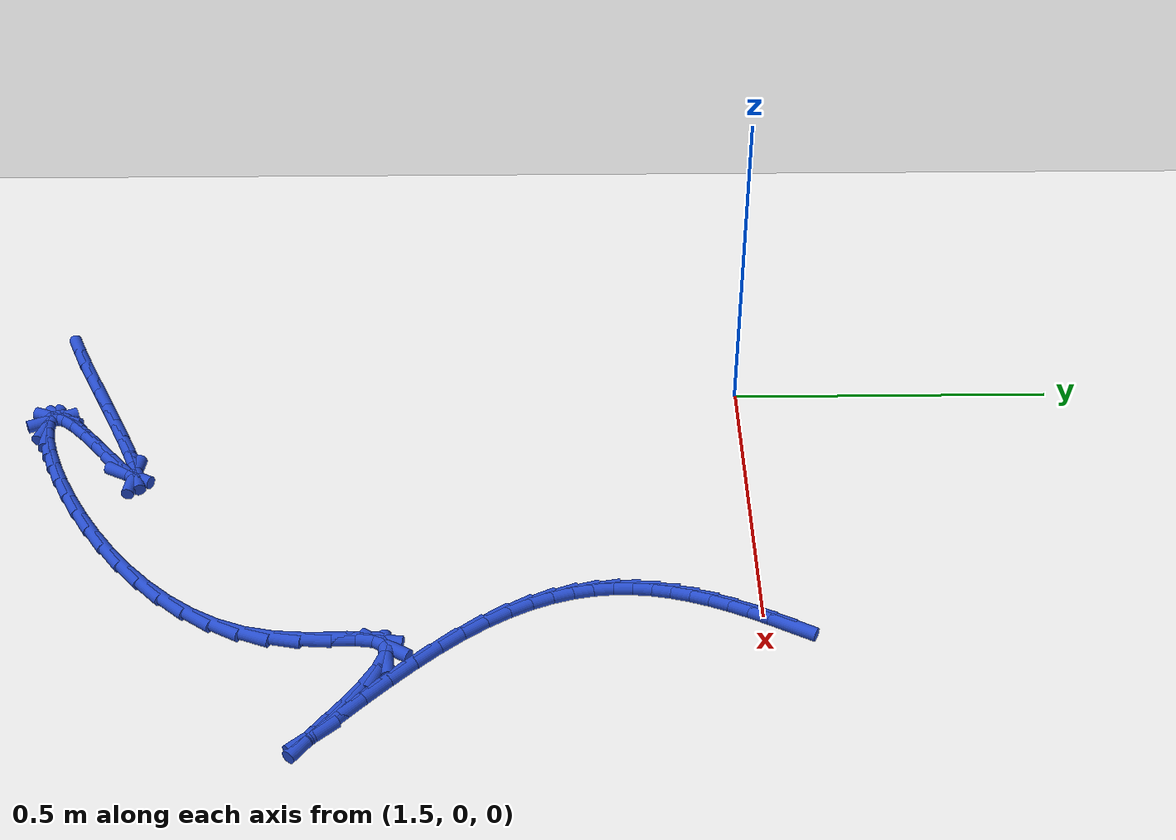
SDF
<sdf version="1.6">
 <world name="default">
  <model name="ground_plane">
   <static>1</static>
   <link name="link">
    <collision name="collision">
     <geometry><plane><normal>0 0 1</normal><size>100 100</size></plane></geometry>
     <surface><friction><ode><mu>100</mu><mu2>50</mu2></ode></friction></surface>
    </collision>
    <visual name="visual">
     <cast_shadows>0</cast_shadows>
     <geometry><plane><normal>0 0 1</normal><size>100 100</size></plane></geometry>
     <material>
      <script><uri>file://media/materials/scripts/gazebo.material</uri><name>Gazebo/WhiteGlow</name></script>
     </material>
    </visual>
   </link>
  </model>
  <model name="line">
   <link name="link_148">
    <pose>2.026156596695086 0.034900806524206976 0.01 0 1.57 1.0692998099908144</pose>
    <collision name="collision">
     <geometry><cylinder><radius>0.01</radius><length>0.08</length></cylinder></geometry>
    </collision>
    <visual name="visual">
     <material>
      <script><name>Gazebo/Blue</name><uri>file://media/materials/scripts/gazebo.material</uri></script>
     </material>
     <geometry><cylinder><radius>0.01</radius><length>0.08</length></cylinder></geometry>
    </visual>
   </link>
   <link name="link_149">
    <pose>2.011159084999877 0.007545425727394667 0.01 0 1.57 1.098246546408077</pose>
    <collision name="collision">
     <geometry><cylinder><radius>0.01</radius><length>0.08</length></cylinder></geometry>
    </collision>
    <visual name="visual">
     <material>
      <script><name>Gazebo/Blue</name><uri>file://media/materials/scripts/gazebo.material</uri></script>
     </material>
     <geometry><cylinder><radius>0.01</radius><length>0.08</length></cylinder></geometry>
    </visual>
   </link>
   <link name="link_150">
    <pose>1.9972937090647713 -0.01957894655006657 0.01 0 1.57 1.1360982717083052</pose>
    <collision name="collision">
     <geometry><cylinder><radius>0.01</radius><length>0.08</length></cylinder></geometry>
    </collision>
    <visual name="visual">
     <material>
      <script><name>Gazebo/Blue</name><uri>file://media/materials/scripts/gazebo.material</uri></script>
     </material>
     <geometry><cylinder><radius>0.01</radius><length>0.08</length></cylinder></geometry>
    </visual>
   </link>
   <link name="link_151">
    <pose>1.9847671175173789 -0.04655733113238582 0.01 0 1.57 1.183449038808155</pose>
    <collision name="collision">
     <geometry><cylinder><radius>0.01</radius><length>0.08</length></cylinder></geometry>
    </collision>
    <visual name="visual">
     <material>
      <script><name>Gazebo/Blue</name><uri>file://media/materials/scripts/gazebo.material</uri></script>
     </material>
     <geometry><cylinder><radius>0.01</radius><length>0.08</length></cylinder></geometry>
    </visual>
   </link>
   <link name="link_152">
    <pose>1.973785958985308 -0.07347474884377143 0.01 0 1.57 1.2407646725776702</pose>
    <collision name="collision">
     <geometry><cylinder><radius>0.01</radius><length>0.08</length></cylinder></geometry>
    </collision>
    <visual name="visual">
     <material>
      <script><name>Gazebo/Blue</name><uri>file://media/materials/scripts/gazebo.material</uri></script>
     </material>
     <geometry><cylinder><radius>0.01</radius><length>0.08</length></cylinder></geometry>
    </visual>
   </link>
   <link name="link_153">
    <pose>1.9645568820961659 -0.10041622050843427 0.01 0 1.57 1.308232263549762</pose>
    <collision name="collision">
     <geometry><cylinder><radius>0.01</radius><length>0.08</length></cylinder></geometry>
    </collision>
    <visual name="visual">
     <material>
      <script><name>Gazebo/Blue</name><uri>file://media/materials/scripts/gazebo.material</uri></script>
     </material>
     <geometry><cylinder><radius>0.01</radius><length>0.08</length></cylinder></geometry>
    </visual>
   </link>
   <link name="link_154">
    <pose>1.9572865354775617 -0.12746676695058257 0.01 0 1.57 1.3855690307968878</pose>
    <collision name="collision">
     <geometry><cylinder><radius>0.01</radius><length>0.08</length></cylinder></geometry>
    </collision>
    <visual name="visual">
     <material>
      <script><name>Gazebo/Blue</name><uri>file://media/materials/scripts/gazebo.material</uri></script>
     </material>
     <geometry><cylinder><radius>0.01</radius><length>0.08</length></cylinder></geometry>
    </visual>
   </link>
   <link name="link_155">
    <pose>1.952181567757104 -0.15471140899442548 0.01 0 1.57 1.4718268725051524</pose>
    <collision name="collision">
     <geometry><cylinder><radius>0.01</radius><length>0.08</length></cylinder></geometry>
    </collision>
    <visual name="visual">
     <material>
      <script><name>Gazebo/Blue</name><uri>file://media/materials/scripts/gazebo.material</uri></script>
     </material>
     <geometry><cylinder><radius>0.01</radius><length>0.08</length></cylinder></geometry>
    </visual>
   </link>
   <link name="link_156">
    <pose>1.9494486275624017 -0.18223516746417218 0.01 0 1.57 1.5652648062560262</pose>
    <collision name="collision">
     <geometry><cylinder><radius>0.01</radius><length>0.08</length></cylinder></geometry>
    </collision>
    <visual name="visual">
     <material>
      <script><name>Gazebo/Blue</name><uri>file://media/materials/scripts/gazebo.material</uri></script>
     </material>
     <geometry><cylinder><radius>0.01</radius><length>0.08</length></cylinder></geometry>
    </visual>
   </link>
   <link name="link_157">
    <pose>1.9492943635210622 -0.2101230631840318 0.01 0 1.57 -1.4782129930456713</pose>
    <collision name="collision">
     <geometry><cylinder><radius>0.01</radius><length>0.08</length></cylinder></geometry>
    </collision>
    <visual name="visual">
     <material>
      <script><name>Gazebo/Blue</name><uri>file://media/materials/scripts/gazebo.material</uri></script>
     </material>
     <geometry><cylinder><radius>0.01</radius><length>0.08</length></cylinder></geometry>
    </visual>
   </link>
   <link name="link_158">
    <pose>1.951925424260695 -0.23846011697821343 0.01 0 1.57 -1.37844183636819</pose>
    <collision name="collision">
     <geometry><cylinder><radius>0.01</radius><length>0.08</length></cylinder></geometry>
    </collision>
    <visual name="visual">
     <material>
      <script><name>Gazebo/Blue</name><uri>file://media/materials/scripts/gazebo.material</uri></script>
     </material>
     <geometry><cylinder><radius>0.01</radius><length>0.08</length></cylinder></geometry>
    </visual>
   </link>
   <link name="link_159">
    <pose>1.9575484584089078 -0.26733134967092625 0.01 0 1.57 -1.2801321884754384</pose>
    <collision name="collision">
     <geometry><cylinder><radius>0.01</radius><length>0.08</length></cylinder></geometry>
    </collision>
    <visual name="visual">
     <material>
      <script><name>Gazebo/Blue</name><uri>file://media/materials/scripts/gazebo.material</uri></script>
     </material>
     <geometry><cylinder><radius>0.01</radius><length>0.08</length></cylinder></geometry>
    </visual>
   </link>
   <link name="link_160">
    <pose>1.96637011459331 -0.29682178208637955 0.01 0 1.57 -1.1860413258783542</pose>
    <collision name="collision">
     <geometry><cylinder><radius>0.01</radius><length>0.08</length></cylinder></geometry>
    </collision>
    <visual name="visual">
     <material>
      <script><name>Gazebo/Blue</name><uri>file://media/materials/scripts/gazebo.material</uri></script>
     </material>
     <geometry><cylinder><radius>0.01</radius><length>0.08</length></cylinder></geometry>
    </visual>
   </link>
   <link name="link_161">
    <pose>1.978597041441509 -0.32701643504878225 0.01 0 1.57 -1.0982320031742576</pose>
    <collision name="collision">
     <geometry><cylinder><radius>0.01</radius><length>0.08</length></cylinder></geometry>
    </collision>
    <visual name="visual">
     <material>
      <script><name>Gazebo/Blue</name><uri>file://media/materials/scripts/gazebo.material</uri></script>
     </material>
     <geometry><cylinder><radius>0.01</radius><length>0.08</length></cylinder></geometry>
    </visual>
   </link>
   <link name="link_162">
    <pose>1.9944358875811137 -0.35800032938234355 0.01 0 1.57 -1.0179493388167618</pose>
    <collision name="collision">
     <geometry><cylinder><radius>0.01</radius><length>0.08</length></cylinder></geometry>
    </collision>
    <visual name="visual">
     <material>
      <script><name>Gazebo/Blue</name><uri>file://media/materials/scripts/gazebo.material</uri></script>
     </material>
     <geometry><cylinder><radius>0.01</radius><length>0.08</length></cylinder></geometry>
    </visual>
   </link>
   <link name="link_163">
    <pose>2.0140933016397327 -0.3898584859112726 0.01 0 1.57 -0.9456889492649938</pose>
    <collision name="collision">
     <geometry><cylinder><radius>0.01</radius><length>0.08</length></cylinder></geometry>
    </collision>
    <visual name="visual">
     <material>
      <script><name>Gazebo/Blue</name><uri>file://media/materials/scripts/gazebo.material</uri></script>
     </material>
     <geometry><cylinder><radius>0.01</radius><length>0.08</length></cylinder></geometry>
    </visual>
   </link>
   <link name="link_164">
    <pose>2.0377759322449744 -0.4226759254597787 0.01 0 1.57 -0.8817113763552216</pose>
    <collision name="collision">
     <geometry><cylinder><radius>0.01</radius><length>0.08</length></cylinder></geometry>
    </collision>
    <visual name="visual">
     <material>
      <script><name>Gazebo/Blue</name><uri>file://media/materials/scripts/gazebo.material</uri></script>
     </material>
     <geometry><cylinder><radius>0.01</radius><length>0.08</length></cylinder></geometry>
    </visual>
   </link>
   <link name="link_165">
    <pose>2.0656480769217183 -0.45650960085550446 0.01 0 1.57 -0.8322895788720078</pose>
    <collision name="collision">
     <geometry><cylinder><radius>0.01</radius><length>0.08</length></cylinder></geometry>
    </collision>
    <visual name="visual">
     <material>
      <script><name>Gazebo/Blue</name><uri>file://media/materials/scripts/gazebo.material</uri></script>
     </material>
     <geometry><cylinder><radius>0.01</radius><length>0.08</length></cylinder></geometry>
    </visual>
   </link>
   <link name="link_166">
    <pose>2.0967438220571615 -0.49066742274566505 0.01 0 1.57 -0.7984434126836565</pose>
    <collision name="collision">
     <geometry><cylinder><radius>0.01</radius><length>0.08</length></cylinder></geometry>
    </collision>
    <visual name="visual">
     <material>
      <script><name>Gazebo/Blue</name><uri>file://media/materials/scripts/gazebo.material</uri></script>
     </material>
     <geometry><cylinder><radius>0.01</radius><length>0.08</length></cylinder></geometry>
    </visual>
   </link>
   <link name="link_167">
    <pose>2.12887282784419 -0.5236458190059992 0.01 0 1.57 -0.7746755814254074</pose>
    <collision name="collision">
     <geometry><cylinder><radius>0.01</radius><length>0.08</length></cylinder></geometry>
    </collision>
    <visual name="visual">
     <material>
      <script><name>Gazebo/Blue</name><uri>file://media/materials/scripts/gazebo.material</uri></script>
     </material>
     <geometry><cylinder><radius>0.01</radius><length>0.08</length></cylinder></geometry>
    </visual>
   </link>
   <link name="link_168">
    <pose>2.159783522485146 -0.5539006362950022 0.01 0 1.57 -0.7581957425340369</pose>
    <collision name="collision">
     <geometry><cylinder><radius>0.01</radius><length>0.08</length></cylinder></geometry>
    </collision>
    <visual name="visual">
     <material>
      <script><name>Gazebo/Blue</name><uri>file://media/materials/scripts/gazebo.material</uri></script>
     </material>
     <geometry><cylinder><radius>0.01</radius><length>0.08</length></cylinder></geometry>
    </visual>
   </link>
   <link name="link_169">
    <pose>2.1872243341823707 -0.579887721271169 0.01 0 1.57 -0.7485566479132283</pose>
    <collision name="collision">
     <geometry><cylinder><radius>0.01</radius><length>0.08</length></cylinder></geometry>
    </collision>
    <visual name="visual">
     <material>
      <script><name>Gazebo/Blue</name><uri>file://media/materials/scripts/gazebo.material</uri></script>
     </material>
     <geometry><cylinder><radius>0.01</radius><length>0.08</length></cylinder></geometry>
    </visual>
   </link>
   <link name="link_170">
    <pose>2.208943691138207 -0.6000629205929962 0.01 0 1.57 -0.7505110268280868</pose>
    <collision name="collision">
     <geometry><cylinder><radius>0.01</radius><length>0.08</length></cylinder></geometry>
    </collision>
    <visual name="visual">
     <material>
      <script><name>Gazebo/Blue</name><uri>file://media/materials/scripts/gazebo.material</uri></script>
     </material>
     <geometry><cylinder><radius>0.01</radius><length>0.08</length></cylinder></geometry>
    </visual>
   </link>
   <link name="link_171">
    <pose>2.2226900215549965 -0.6128820809189784 0.01 0 1.57 -0.8387344292749609</pose>
    <collision name="collision">
     <geometry><cylinder><radius>0.01</radius><length>0.08</length></cylinder></geometry>
    </collision>
    <visual name="visual">
     <material>
      <script><name>Gazebo/Blue</name><uri>file://media/materials/scripts/gazebo.material</uri></script>
     </material>
     <geometry><cylinder><radius>0.01</radius><length>0.08</length></cylinder></geometry>
    </visual>
   </link>
   <link name="link_172">
    <pose>2.226211753635081 -0.6168010489076112 0.01 0 1.57 -0.6284560872540248</pose>
    <collision name="collision">
     <geometry><cylinder><radius>0.01</radius><length>0.08</length></cylinder></geometry>
    </collision>
    <visual name="visual">
     <material>
      <script><name>Gazebo/Blue</name><uri>file://media/materials/scripts/gazebo.material</uri></script>
     </material>
     <geometry><cylinder><radius>0.01</radius><length>0.08</length></cylinder></geometry>
    </visual>
   </link>
   <link name="link_173">
    <pose>2.217346941023165 -0.6103585222588764 0.01 0 1.57 -0.6501838471967537</pose>
    <collision name="collision">
     <geometry><cylinder><radius>0.01</radius><length>0.08</length></cylinder></geometry>
    </collision>
    <visual name="visual">
     <material>
      <script><name>Gazebo/Blue</name><uri>file://media/materials/scripts/gazebo.material</uri></script>
     </material>
     <geometry><cylinder><radius>0.01</radius><length>0.08</length></cylinder></geometry>
    </visual>
   </link>
   <link name="link_174">
    <pose>2.196737656120614 -0.5946852737377298 0.01 0 1.57 -0.6302040882306026</pose>
    <collision name="collision">
     <geometry><cylinder><radius>0.01</radius><length>0.08</length></cylinder></geometry>
    </collision>
    <visual name="visual">
     <material>
      <script><name>Gazebo/Blue</name><uri>file://media/materials/scripts/gazebo.material</uri></script>
     </material>
     <geometry><cylinder><radius>0.01</radius><length>0.08</length></cylinder></geometry>
    </visual>
   </link>
   <link name="link_175">
    <pose>2.1683176128333357 -0.5739549166202709 0.01 0 1.57 -0.5887357608940456</pose>
    <collision name="collision">
     <geometry><cylinder><radius>0.01</radius><length>0.08</length></cylinder></geometry>
    </collision>
    <visual name="visual">
     <material>
      <script><name>Gazebo/Blue</name><uri>file://media/materials/scripts/gazebo.material</uri></script>
     </material>
     <geometry><cylinder><radius>0.01</radius><length>0.08</length></cylinder></geometry>
    </visual>
   </link>
   <link name="link_176">
    <pose>2.136208461628611 -0.5525147954293571 0.01 0 1.57 -0.5120164349924062</pose>
    <collision name="collision">
     <geometry><cylinder><radius>0.01</radius><length>0.08</length></cylinder></geometry>
    </collision>
    <visual name="visual">
     <material>
      <script><name>Gazebo/Blue</name><uri>file://media/materials/scripts/gazebo.material</uri></script>
     </material>
     <geometry><cylinder><radius>0.01</radius><length>0.08</length></cylinder></geometry>
    </visual>
   </link>
   <link name="link_177">
    <pose>2.104531852973721 -0.5347122546878452 0.01 0 1.57 -0.3473022129685776</pose>
    <collision name="collision">
     <geometry><cylinder><radius>0.01</radius><length>0.08</length></cylinder></geometry>
    </collision>
    <visual name="visual">
     <material>
      <script><name>Gazebo/Blue</name><uri>file://media/materials/scripts/gazebo.material</uri></script>
     </material>
     <geometry><cylinder><radius>0.01</radius><length>0.08</length></cylinder></geometry>
    </visual>
   </link>
   <link name="link_178">
    <pose>2.0774094373359455 -0.5248946389185923 0.01 0 1.57 0.12638366052885058</pose>
    <collision name="collision">
     <geometry><cylinder><radius>0.01</radius><length>0.08</length></cylinder></geometry>
    </collision>
    <visual name="visual">
     <material>
      <script><name>Gazebo/Blue</name><uri>file://media/materials/scripts/gazebo.material</uri></script>
     </material>
     <geometry><cylinder><radius>0.01</radius><length>0.08</length></cylinder></geometry>
    </visual>
   </link>
   <link name="link_179">
    <pose>2.0588076221880836 -0.5272582020942879 0.01 0 1.57 1.0140235358269467</pose>
    <collision name="collision">
     <geometry><cylinder><radius>0.01</radius><length>0.08</length></cylinder></geometry>
    </collision>
    <visual name="visual">
     <material>
      <script><name>Gazebo/Blue</name><uri>file://media/materials/scripts/gazebo.material</uri></script>
     </material>
     <geometry><cylinder><radius>0.01</radius><length>0.08</length></cylinder></geometry>
    </visual>
   </link>
   <link name="link_180">
    <pose>2.049236144463225 -0.5426349867761159 0.01 0 1.57 1.439375701349873</pose>
    <collision name="collision">
     <geometry><cylinder><radius>0.01</radius><length>0.08</length></cylinder></geometry>
    </collision>
    <visual name="visual">
     <material>
      <script><name>Gazebo/Blue</name><uri>file://media/materials/scripts/gazebo.material</uri></script>
     </material>
     <geometry><cylinder><radius>0.01</radius><length>0.08</length></cylinder></geometry>
    </visual>
   </link>
   <link name="link_181">
    <pose>2.0458101984604347 -0.5685532902203336 0.01 0 1.57 1.5616963094230585</pose>
    <collision name="collision">
     <geometry><cylinder><radius>0.01</radius><length>0.08</length></cylinder></geometry>
    </collision>
    <visual name="visual">
     <material>
      <script><name>Gazebo/Blue</name><uri>file://media/materials/scripts/gazebo.material</uri></script>
     </material>
     <geometry><cylinder><radius>0.01</radius><length>0.08</length></cylinder></geometry>
    </visual>
   </link>
   <link name="link_182">
    <pose>2.0455021623467426 -0.6024024136013875 0.01 0 1.57 1.5652372250733473</pose>
    <collision name="collision">
     <geometry><cylinder><radius>0.01</radius><length>0.08</length></cylinder></geometry>
    </collision>
    <visual name="visual">
     <material>
      <script><name>Gazebo/Blue</name><uri>file://media/materials/scripts/gazebo.material</uri></script>
     </material>
     <geometry><cylinder><radius>0.01</radius><length>0.08</length></cylinder></geometry>
    </visual>
   </link>
   <link name="link_183">
    <pose>2.0452844142891817 -0.6415716580937242 0.01 0 1.57 1.4955997409815704</pose>
    <collision name="collision">
     <geometry><cylinder><radius>0.01</radius><length>0.08</length></cylinder></geometry>
    </collision>
    <visual name="visual">
     <material>
      <script><name>Gazebo/Blue</name><uri>file://media/materials/scripts/gazebo.material</uri></script>
     </material>
     <geometry><cylinder><radius>0.01</radius><length>0.08</length></cylinder></geometry>
    </visual>
   </link>
   <link name="link_184">
    <pose>2.042129332454782 -0.6834503248717888 0.01 0 1.57 1.3590855821368328</pose>
    <collision name="collision">
     <geometry><cylinder><radius>0.01</radius><length>0.08</length></cylinder></geometry>
    </collision>
    <visual name="visual">
     <material>
      <script><name>Gazebo/Blue</name><uri>file://media/materials/scripts/gazebo.material</uri></script>
     </material>
     <geometry><cylinder><radius>0.01</radius><length>0.08</length></cylinder></geometry>
    </visual>
   </link>
   <link name="link_185">
    <pose>2.0330957269693974 -0.7254804734956788 0.01 0 1.57 1.1981714974373696</pose>
    <collision name="collision">
     <geometry><cylinder><radius>0.01</radius><length>0.08</length></cylinder></geometry>
    </collision>
    <visual name="visual">
     <material>
      <script><name>Gazebo/Blue</name><uri>file://media/materials/scripts/gazebo.material</uri></script>
     </material>
     <geometry><cylinder><radius>0.01</radius><length>0.08</length></cylinder></geometry>
    </visual>
   </link>
   <link name="link_186">
    <pose>2.017151804637234 -0.7662696662826397 0.01 0 1.57 1.0600383526726005</pose>
    <collision name="collision">
     <geometry><cylinder><radius>0.01</radius><length>0.08</length></cylinder></geometry>
    </collision>
    <visual name="visual">
     <material>
      <script><name>Gazebo/Blue</name><uri>file://media/materials/scripts/gazebo.material</uri></script>
     </material>
     <geometry><cylinder><radius>0.01</radius><length>0.08</length></cylinder></geometry>
    </visual>
   </link>
   <link name="link_187">
    <pose>1.9951325296430662 -0.8055649411228291 0.01 0 1.57 0.9448022208134389</pose>
    <collision name="collision">
     <geometry><cylinder><radius>0.01</radius><length>0.08</length></cylinder></geometry>
    </collision>
    <visual name="visual">
     <material>
      <script><name>Gazebo/Blue</name><uri>file://media/materials/scripts/gazebo.material</uri></script>
     </material>
     <geometry><cylinder><radius>0.01</radius><length>0.08</length></cylinder></geometry>
    </visual>
   </link>
   <link name="link_188">
    <pose>1.9679507689073636 -0.8431608880228794 0.01 0 1.57 0.8487765925064201</pose>
    <collision name="collision">
     <geometry><cylinder><radius>0.01</radius><length>0.08</length></cylinder></geometry>
    </collision>
    <visual name="visual">
     <material>
      <script><name>Gazebo/Blue</name><uri>file://media/materials/scripts/gazebo.material</uri></script>
     </material>
     <geometry><cylinder><radius>0.01</radius><length>0.08</length></cylinder></geometry>
    </visual>
   </link>
   <link name="link_189">
    <pose>1.9365193893505972 -0.8788520969894222 0.01 0 1.57 0.7680321779233583</pose>
    <collision name="collision">
     <geometry><cylinder><radius>0.01</radius><length>0.08</length></cylinder></geometry>
    </collision>
    <visual name="visual">
     <material>
      <script><name>Gazebo/Blue</name><uri>file://media/materials/scripts/gazebo.material</uri></script>
     </material>
     <geometry><cylinder><radius>0.01</radius><length>0.08</length></cylinder></geometry>
    </visual>
   </link>
   <link name="link_190">
    <pose>1.9017512578932374 -0.9124331580290899 0.01 0 1.57 0.699041343843061</pose>
    <collision name="collision">
     <geometry><cylinder><radius>0.01</radius><length>0.08</length></cylinder></geometry>
    </collision>
    <visual name="visual">
     <material>
      <script><name>Gazebo/Blue</name><uri>file://media/materials/scripts/gazebo.material</uri></script>
     </material>
     <geometry><cylinder><radius>0.01</radius><length>0.08</length></cylinder></geometry>
    </visual>
   </link>
   <link name="link_191">
    <pose>1.864559241455753 -0.9436986611485136 0.01 0 1.57 0.6388092426255965</pose>
    <collision name="collision">
     <geometry><cylinder><radius>0.01</radius><length>0.08</length></cylinder></geometry>
    </collision>
    <visual name="visual">
     <material>
      <script><name>Gazebo/Blue</name><uri>file://media/materials/scripts/gazebo.material</uri></script>
     </material>
     <geometry><cylinder><radius>0.01</radius><length>0.08</length></cylinder></geometry>
    </visual>
   </link>
   <link name="link_192">
    <pose>1.8258562069586166 -0.9724431963543263 0.01 0 1.57 0.5847785368651383</pose>
    <collision name="collision">
     <geometry><cylinder><radius>0.01</radius><length>0.08</length></cylinder></geometry>
    </collision>
    <visual name="visual">
     <material>
      <script><name>Gazebo/Blue</name><uri>file://media/materials/scripts/gazebo.material</uri></script>
     </material>
     <geometry><cylinder><radius>0.01</radius><length>0.08</length></cylinder></geometry>
    </visual>
   </link>
   <link name="link_193">
    <pose>1.7865550213222963 -0.9984613536531594 0.01 0 1.57 0.534637536067222</pose>
    <collision name="collision">
     <geometry><cylinder><radius>0.01</radius><length>0.08</length></cylinder></geometry>
    </collision>
    <visual name="visual">
     <material>
      <script><name>Gazebo/Blue</name><uri>file://media/materials/scripts/gazebo.material</uri></script>
     </material>
     <geometry><cylinder><radius>0.01</radius><length>0.08</length></cylinder></geometry>
    </visual>
   </link>
   <link name="link_194">
    <pose>1.7475685514672639 -1.0215477230516445 0.01 0 1.57 0.4860542941771171</pose>
    <collision name="collision">
     <geometry><cylinder><radius>0.01</radius><length>0.08</length></cylinder></geometry>
    </collision>
    <visual name="visual">
     <material>
      <script><name>Gazebo/Blue</name><uri>file://media/materials/scripts/gazebo.material</uri></script>
     </material>
     <geometry><cylinder><radius>0.01</radius><length>0.08</length></cylinder></geometry>
    </visual>
   </link>
   <link name="link_195">
    <pose>1.7098096643139886 -1.0414968945564143 0.01 0 1.57 0.43627266256026254</pose>
    <collision name="collision">
     <geometry><cylinder><radius>0.01</radius><length>0.08</length></cylinder></geometry>
    </collision>
    <visual name="visual">
     <material>
      <script><name>Gazebo/Blue</name><uri>file://media/materials/scripts/gazebo.material</uri></script>
     </material>
     <geometry><cylinder><radius>0.01</radius><length>0.08</length></cylinder></geometry>
    </visual>
   </link>
   <link name="link_196">
    <pose>1.6741912267829409 -1.0581034581741002 0.01 0 1.57 0.3813663556799299</pose>
    <collision name="collision">
     <geometry><cylinder><radius>0.01</radius><length>0.08</length></cylinder></geometry>
    </collision>
    <visual name="visual">
     <material>
      <script><name>Gazebo/Blue</name><uri>file://media/materials/scripts/gazebo.material</uri></script>
     </material>
     <geometry><cylinder><radius>0.01</radius><length>0.08</length></cylinder></geometry>
    </visual>
   </link>
   <link name="link_197">
    <pose>1.6416261057945918 -1.0711620039113343 0.01 0 1.57 0.31456277009554234</pose>
    <collision name="collision">
     <geometry><cylinder><radius>0.01</radius><length>0.08</length></cylinder></geometry>
    </collision>
    <visual name="visual">
     <material>
      <script><name>Gazebo/Blue</name><uri>file://media/materials/scripts/gazebo.material</uri></script>
     </material>
     <geometry><cylinder><radius>0.01</radius><length>0.08</length></cylinder></geometry>
    </visual>
   </link>
   <link name="link_198">
    <pose>1.6130271682694115 -1.080467121774749 0.01 0 1.57 0.22168781086554343</pose>
    <collision name="collision">
     <geometry><cylinder><radius>0.01</radius><length>0.08</length></cylinder></geometry>
    </collision>
    <visual name="visual">
     <material>
      <script><name>Gazebo/Blue</name><uri>file://media/materials/scripts/gazebo.material</uri></script>
     </material>
     <geometry><cylinder><radius>0.01</radius><length>0.08</length></cylinder></geometry>
    </visual>
   </link>
   <link name="link_199">
    <pose>1.5893072811278688 -1.0858134017709753 0.01 0 1.57 0.065837002679319</pose>
    <collision name="collision">
     <geometry><cylinder><radius>0.01</radius><length>0.08</length></cylinder></geometry>
    </collision>
    <visual name="visual">
     <material>
      <script><name>Gazebo/Blue</name><uri>file://media/materials/scripts/gazebo.material</uri></script>
     </material>
     <geometry><cylinder><radius>0.01</radius><length>0.08</length></cylinder></geometry>
    </visual>
   </link>
   <link name="link_200">
    <pose>1.5713793112904355 -1.086995433906646 0.01 0 1.57 -0.27673390760166583</pose>
    <collision name="collision">
     <geometry><cylinder><radius>0.01</radius><length>0.08</length></cylinder></geometry>
    </collision>
    <visual name="visual">
     <material>
      <script><name>Gazebo/Blue</name><uri>file://media/materials/scripts/gazebo.material</uri></script>
     </material>
     <geometry><cylinder><radius>0.01</radius><length>0.08</length></cylinder></geometry>
    </visual>
   </link>
   <link name="link_201">
    <pose>1.5601561256775818 -1.0838078081883928 0.01 0 1.57 -1.135974920849424</pose>
    <collision name="collision">
     <geometry><cylinder><radius>0.01</radius><length>0.08</length></cylinder></geometry>
    </collision>
    <visual name="visual">
     <material>
      <script><name>Gazebo/Blue</name><uri>file://media/materials/scripts/gazebo.material</uri></script>
     </material>
     <geometry><cylinder><radius>0.01</radius><length>0.08</length></cylinder></geometry>
    </visual>
   </link>
   <link name="link_202">
    <pose>1.556550591209777 -1.0760451146228476 0.01 0 1.57 1.1966485711128185</pose>
    <collision name="collision">
     <geometry><cylinder><radius>0.01</radius><length>0.08</length></cylinder></geometry>
    </collision>
    <visual name="visual">
     <material>
      <script><name>Gazebo/Blue</name><uri>file://media/materials/scripts/gazebo.material</uri></script>
     </material>
     <geometry><cylinder><radius>0.01</radius><length>0.08</length></cylinder></geometry>
    </visual>
   </link>
   <link name="link_203">
    <pose>1.561475574807492 -1.0635019432166422 0.01 0 1.57 0.8846436881992428</pose>
    <collision name="collision">
     <geometry><cylinder><radius>0.01</radius><length>0.08</length></cylinder></geometry>
    </collision>
    <visual name="visual">
     <material>
      <script><name>Gazebo/Blue</name><uri>file://media/materials/scripts/gazebo.material</uri></script>
     </material>
     <geometry><cylinder><radius>0.01</radius><length>0.08</length></cylinder></geometry>
    </visual>
   </link>
   <link name="link_204">
    <pose>1.575819968682617 -1.045985034744747 0.01 0 1.57 0.7610943901395206</pose>
    <collision name="collision">
     <geometry><cylinder><radius>0.01</radius><length>0.08</length></cylinder></geometry>
    </collision>
    <visual name="visual">
     <material>
      <script><name>Gazebo/Blue</name><uri>file://media/materials/scripts/gazebo.material</uri></script>
     </material>
     <geometry><cylinder><radius>0.01</radius><length>0.08</length></cylinder></geometry>
    </visual>
   </link>
   <link name="link_205">
    <pose>1.5986807531181595 -1.0242092998002748 0.01 0 1.57 0.7138643747298393</pose>
    <collision name="collision">
     <geometry><cylinder><radius>0.01</radius><length>0.08</length></cylinder></geometry>
    </collision>
    <visual name="visual">
     <material>
      <script><name>Gazebo/Blue</name><uri>file://media/materials/scripts/gazebo.material</uri></script>
     </material>
     <geometry><cylinder><radius>0.01</radius><length>0.08</length></cylinder></geometry>
    </visual>
   </link>
   <link name="link_206">
    <pose>1.6261525557158736 -1.0004112896577673 0.01 0 1.57 0.6988725917597591</pose>
    <collision name="collision">
     <geometry><cylinder><radius>0.01</radius><length>0.08</length></cylinder></geometry>
    </collision>
    <visual name="visual">
     <material>
      <script><name>Gazebo/Blue</name><uri>file://media/materials/scripts/gazebo.material</uri></script>
     </material>
     <geometry><cylinder><radius>0.01</radius><length>0.08</length></cylinder></geometry>
    </visual>
   </link>
   <link name="link_207">
    <pose>1.6540435380191891 -0.9769727412026787 0.01 0 1.57 0.7092115984239041</pose>
    <collision name="collision">
     <geometry><cylinder><radius>0.01</radius><length>0.08</length></cylinder></geometry>
    </collision>
    <visual name="visual">
     <material>
      <script><name>Gazebo/Blue</name><uri>file://media/materials/scripts/gazebo.material</uri></script>
     </material>
     <geometry><cylinder><radius>0.01</radius><length>0.08</length></cylinder></geometry>
    </visual>
   </link>
   <link name="link_208">
    <pose>1.6781618615715341 -0.9562753913204615 0.01 0 1.57 0.7671384833649761</pose>
    <collision name="collision">
     <geometry><cylinder><radius>0.01</radius><length>0.08</length></cylinder></geometry>
    </collision>
    <visual name="visual">
     <material>
      <script><name>Gazebo/Blue</name><uri>file://media/materials/scripts/gazebo.material</uri></script>
     </material>
     <geometry><cylinder><radius>0.01</radius><length>0.08</length></cylinder></geometry>
    </visual>
   </link>
   <link name="link_209">
    <pose>1.6943156879163386 -0.94070097689657 0.01 0 1.57 1.089369473159458</pose>
    <collision name="collision">
     <geometry><cylinder><radius>0.01</radius><length>0.08</length></cylinder></geometry>
    </collision>
    <visual name="visual">
     <material>
      <script><name>Gazebo/Blue</name><uri>file://media/materials/scripts/gazebo.material</uri></script>
     </material>
     <geometry><cylinder><radius>0.01</radius><length>0.08</length></cylinder></geometry>
    </visual>
   </link>
   <link name="link_210">
    <pose>1.698626031563106 -0.9324503433151958 0.01 0 1.57 -0.09756219078631381</pose>
    <collision name="collision">
     <geometry><cylinder><radius>0.01</radius><length>0.08</length></cylinder></geometry>
    </collision>
    <visual name="visual">
     <material>
      <script><name>Gazebo/Blue</name><uri>file://media/materials/scripts/gazebo.material</uri></script>
     </material>
     <geometry><cylinder><radius>0.01</radius><length>0.08</length></cylinder></geometry>
    </visual>
   </link>
   <link name="link_211">
    <pose>1.6907504065057006 -0.9316795329050789 0.01 0 1.57 0.2976108621312725</pose>
    <collision name="collision">
     <geometry><cylinder><radius>0.01</radius><length>0.08</length></cylinder></geometry>
    </collision>
    <visual name="visual">
     <material>
      <script><name>Gazebo/Blue</name><uri>file://media/materials/scripts/gazebo.material</uri></script>
     </material>
     <geometry><cylinder><radius>0.01</radius><length>0.08</length></cylinder></geometry>
    </visual>
   </link>
   <link name="link_212">
    <pose>1.6725811455166975 -0.9372524163751703 0.01 0 1.57 0.3852389164309721</pose>
    <collision name="collision">
     <geometry><cylinder><radius>0.01</radius><length>0.08</length></cylinder></geometry>
    </collision>
    <visual name="visual">
     <material>
      <script><name>Gazebo/Blue</name><uri>file://media/materials/scripts/gazebo.material</uri></script>
     </material>
     <geometry><cylinder><radius>0.01</radius><length>0.08</length></cylinder></geometry>
    </visual>
   </link>
   <link name="link_213">
    <pose>1.646045781344372 -0.9480125118178919 0.01 0 1.57 0.42165672010132543</pose>
    <collision name="collision">
     <geometry><cylinder><radius>0.01</radius><length>0.08</length></cylinder></geometry>
    </collision>
    <visual name="visual">
     <material>
      <script><name>Gazebo/Blue</name><uri>file://media/materials/scripts/gazebo.material</uri></script>
     </material>
     <geometry><cylinder><radius>0.01</radius><length>0.08</length></cylinder></geometry>
    </visual>
   </link>
   <link name="link_214">
    <pose>1.6130718467369982 -0.9628033373256647 0.01 0 1.57 0.4403903519146949</pose>
    <collision name="collision">
     <geometry><cylinder><radius>0.01</radius><length>0.08</length></cylinder></geometry>
    </collision>
    <visual name="visual">
     <material>
      <script><name>Gazebo/Blue</name><uri>file://media/materials/scripts/gazebo.material</uri></script>
     </material>
     <geometry><cylinder><radius>0.01</radius><length>0.08</length></cylinder></geometry>
    </visual>
   </link>
   <link name="link_215">
    <pose>1.5755868744428516 -0.9804684109909101 0.01 0 1.57 0.45055751975784797</pose>
    <collision name="collision">
     <geometry><cylinder><radius>0.01</radius><length>0.08</length></cylinder></geometry>
    </collision>
    <visual name="visual">
     <material>
      <script><name>Gazebo/Blue</name><uri>file://media/materials/scripts/gazebo.material</uri></script>
     </material>
     <geometry><cylinder><radius>0.01</radius><length>0.08</length></cylinder></geometry>
    </visual>
   </link>
   <link name="link_216">
    <pose>1.5355183972102076 -0.9998512509060495 0.01 0 1.57 0.4554006712426421</pose>
    <collision name="collision">
     <geometry><cylinder><radius>0.01</radius><length>0.08</length></cylinder></geometry>
    </collision>
    <visual name="visual">
     <material>
      <script><name>Gazebo/Blue</name><uri>file://media/materials/scripts/gazebo.material</uri></script>
     </material>
     <geometry><cylinder><radius>0.01</radius><length>0.08</length></cylinder></geometry>
    </visual>
   </link>
   <link name="link_217">
    <pose>1.4947939477873387 -1.0197953751635054 0.01 0 1.57 0.4559632887078754</pose>
    <collision name="collision">
     <geometry><cylinder><radius>0.01</radius><length>0.08</length></cylinder></geometry>
    </collision>
    <visual name="visual">
     <material>
      <script><name>Gazebo/Blue</name><uri>file://media/materials/scripts/gazebo.material</uri></script>
     </material>
     <geometry><cylinder><radius>0.01</radius><length>0.08</length></cylinder></geometry>
    </visual>
   </link>
   <link name="link_218">
    <pose>1.4553410589225209 -1.039144301855699 0.01 0 1.57 0.4514208830811532</pose>
    <collision name="collision">
     <geometry><cylinder><radius>0.01</radius><length>0.08</length></cylinder></geometry>
    </collision>
    <visual name="visual">
     <material>
      <script><name>Gazebo/Blue</name><uri>file://media/materials/scripts/gazebo.material</uri></script>
     </material>
     <geometry><cylinder><radius>0.01</radius><length>0.08</length></cylinder></geometry>
    </visual>
   </link>
   <link name="link_219">
    <pose>1.418774830211763 -1.0568719278617413 0.01 0 1.57 0.43757051793700313</pose>
    <collision name="collision">
     <geometry><cylinder><radius>0.01</radius><length>0.08</length></cylinder></geometry>
    </collision>
    <visual name="visual">
     <material>
      <script><name>Gazebo/Blue</name><uri>file://media/materials/scripts/gazebo.material</uri></script>
     </material>
     <geometry><cylinder><radius>0.01</radius><length>0.08</length></cylinder></geometry>
    </visual>
   </link>
   <link name="link_220">
    <pose>1.3851276217620734 -1.0726126294392184 0.01 0 1.57 0.41102744570570754</pose>
    <collision name="collision">
     <geometry><cylinder><radius>0.01</radius><length>0.08</length></cylinder></geometry>
    </collision>
    <visual name="visual">
     <material>
      <script><name>Gazebo/Blue</name><uri>file://media/materials/scripts/gazebo.material</uri></script>
     </material>
     <geometry><cylinder><radius>0.01</radius><length>0.08</length></cylinder></geometry>
    </visual>
   </link>
  </model>
 </world>
</sdf>
